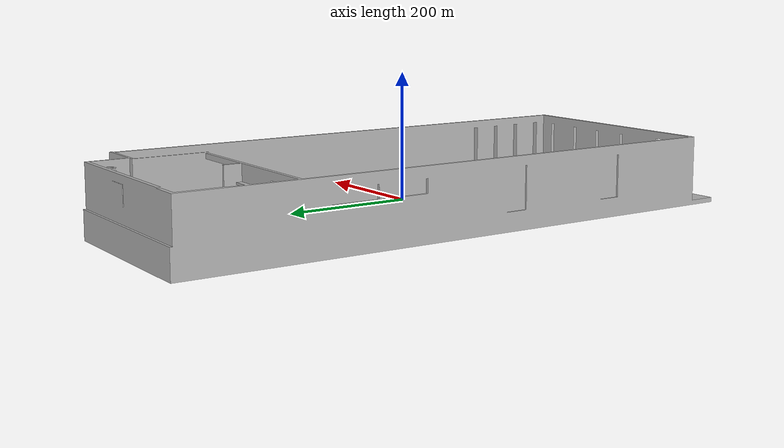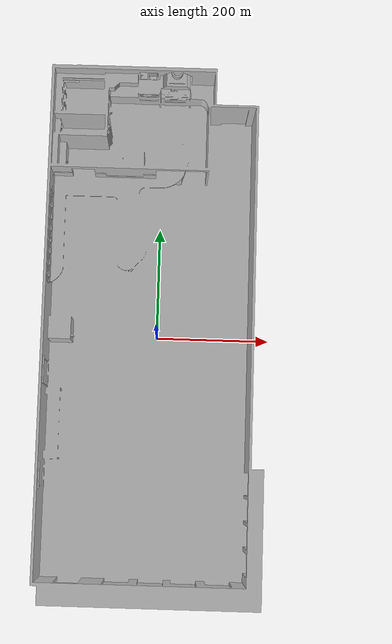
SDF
<?xml version='1.0'?>
<sdf version='1.6'>
  <model name='cafe2'>
    <link name='link'>
      <pose frame=''>0 0 -0.185 0 -0 0</pose>
      <self_collide>0</self_collide>
      <kinematic>0</kinematic>
      <gravity>1</gravity>
      <inertial>
        <mass>1</mass>
        <pose frame=''>0 0 0 0 -0 0</pose>
        <inertia>
          <ixx>1</ixx>
          <ixy>0</ixy>
          <ixz>0</ixz>
          <iyy>1</iyy>
          <iyz>0</iyz>
          <izz>1</izz>
        </inertia>
      </inertial>
      <visual name='visual'>
        <geometry>
          <mesh>
            <uri>model://cafe/meshes/cafe.dae</uri>
            <scale>1 1 1</scale>
          </mesh>
        </geometry>
        <pose frame=''>0 0 0 0 -0 0</pose>
        <cast_shadows>1</cast_shadows>
        <transparency>0</transparency>
        <material>
          <emissive>0 0 0 1</emissive>
          <shader type='vertex'>
            <normal_map>__default__</normal_map>
          </shader>
        </material>
      </visual>
      <collision name='main_floor'>
        <laser_retro>0</laser_retro>
        <max_contacts>10</max_contacts>
        <pose frame=''>-0.4 -0.75 -0.2 0 -0 0</pose>
        <geometry>
          <box>
            <size>9.38 22.63 0.19</size>
          </box>
        </geometry>
        <surface>
          <friction>
            <ode>
              <mu>1</mu>
              <mu2>1</mu2>
              <fdir1>0 0 0</fdir1>
              <slip1>0</slip1>
              <slip2>0</slip2>
            </ode>
            <torsional>
              <coefficient>1</coefficient>
              <patch_radius>0</patch_radius>
              <surface_radius>0</surface_radius>
              <use_patch_radius>1</use_patch_radius>
              <ode>
                <slip>0</slip>
              </ode>
            </torsional>
          </friction>
          <bounce>
            <restitution_coefficient>0</restitution_coefficient>
            <threshold>1e+06</threshold>
          </bounce>
          <contact>
            <collide_without_contact>0</collide_without_contact>
            <collide_without_contact_bitmask>1</collide_without_contact_bitmask>
            <collide_bitmask>1</collide_bitmask>
            <ode>
              <soft_cfm>0</soft_cfm>
              <soft_erp>0.2</soft_erp>
              <kp>1e+13</kp>
              <kd>1</kd>
              <max_vel>0.01</max_vel>
              <min_depth>0</min_depth>
            </ode>
            <bullet>
              <split_impulse>1</split_impulse>
              <split_impulse_penetration_threshold>-0.01</split_impulse_penetration_threshold>
              <soft_cfm>0</soft_cfm>
              <soft_erp>0.2</soft_erp>
              <kp>1e+13</kp>
              <kd>1</kd>
            </bullet>
          </contact>
        </surface>
      </collision>
      <collision name='wall_1'>
        <laser_retro>0</laser_retro>
        <max_contacts>10</max_contacts>
        <pose frame=''>-5.03 0.53 1.415 0 -0 0</pose>
        <geometry>
          <box>
            <size>0.12 23.16 2.83</size>
          </box>
        </geometry>
        <surface>
          <friction>
            <ode>
              <mu>1</mu>
              <mu2>1</mu2>
              <fdir1>0 0 0</fdir1>
              <slip1>0</slip1>
              <slip2>0</slip2>
            </ode>
            <torsional>
              <coefficient>1</coefficient>
              <patch_radius>0</patch_radius>
              <surface_radius>0</surface_radius>
              <use_patch_radius>1</use_patch_radius>
              <ode>
                <slip>0</slip>
              </ode>
            </torsional>
          </friction>
          <bounce>
            <restitution_coefficient>0</restitution_coefficient>
            <threshold>1e+06</threshold>
          </bounce>
          <contact>
            <collide_without_contact>0</collide_without_contact>
            <collide_without_contact_bitmask>1</collide_without_contact_bitmask>
            <collide_bitmask>1</collide_bitmask>
            <ode>
              <soft_cfm>0</soft_cfm>
              <soft_erp>0.2</soft_erp>
              <kp>1e+13</kp>
              <kd>1</kd>
              <max_vel>0.01</max_vel>
              <min_depth>0</min_depth>
            </ode>
            <bullet>
              <split_impulse>1</split_impulse>
              <split_impulse_penetration_threshold>-0.01</split_impulse_penetration_threshold>
              <soft_cfm>0</soft_cfm>
              <soft_erp>0.2</soft_erp>
              <kp>1e+13</kp>
              <kd>1</kd>
            </bullet>
          </contact>
        </surface>
      </collision>
      <collision name='wall_2'>
        <laser_retro>0</laser_retro>
        <max_contacts>10</max_contacts>
        <pose frame=''>4.24 -0.31 1.415 0 -0 0</pose>
        <geometry>
          <box>
            <size>0.12 21.48 2.83</size>
          </box>
        </geometry>
        <surface>
          <friction>
            <ode>
              <mu>1</mu>
              <mu2>1</mu2>
              <fdir1>0 0 0</fdir1>
              <slip1>0</slip1>
              <slip2>0</slip2>
            </ode>
            <torsional>
              <coefficient>1</coefficient>
              <patch_radius>0</patch_radius>
              <surface_radius>0</surface_radius>
              <use_patch_radius>1</use_patch_radius>
              <ode>
                <slip>0</slip>
              </ode>
            </torsional>
          </friction>
          <bounce>
            <restitution_coefficient>0</restitution_coefficient>
            <threshold>1e+06</threshold>
          </bounce>
          <contact>
            <collide_without_contact>0</collide_without_contact>
            <collide_without_contact_bitmask>1</collide_without_contact_bitmask>
            <collide_bitmask>1</collide_bitmask>
            <ode>
              <soft_cfm>0</soft_cfm>
              <soft_erp>0.2</soft_erp>
              <kp>1e+13</kp>
              <kd>1</kd>
              <max_vel>0.01</max_vel>
              <min_depth>0</min_depth>
            </ode>
            <bullet>
              <split_impulse>1</split_impulse>
              <split_impulse_penetration_threshold>-0.01</split_impulse_penetration_threshold>
              <soft_cfm>0</soft_cfm>
              <soft_erp>0.2</soft_erp>
              <kp>1e+13</kp>
              <kd>1</kd>
            </bullet>
          </contact>
        </surface>
      </collision>
      <collision name='wall_3'>
        <laser_retro>0</laser_retro>
        <max_contacts>10</max_contacts>
        <pose frame=''>-1.48 7.43 1.415 0 -0 0</pose>
        <geometry>
          <box>
            <size>7.2 0.12 2.83</size>
          </box>
        </geometry>
        <surface>
          <friction>
            <ode>
              <mu>1</mu>
              <mu2>1</mu2>
              <fdir1>0 0 0</fdir1>
              <slip1>0</slip1>
              <slip2>0</slip2>
            </ode>
            <torsional>
              <coefficient>1</coefficient>
              <patch_radius>0</patch_radius>
              <surface_radius>0</surface_radius>
              <use_patch_radius>1</use_patch_radius>
              <ode>
                <slip>0</slip>
              </ode>
            </torsional>
          </friction>
          <bounce>
            <restitution_coefficient>0</restitution_coefficient>
            <threshold>1e+06</threshold>
          </bounce>
          <contact>
            <collide_without_contact>0</collide_without_contact>
            <collide_without_contact_bitmask>1</collide_without_contact_bitmask>
            <collide_bitmask>1</collide_bitmask>
            <ode>
              <soft_cfm>0</soft_cfm>
              <soft_erp>0.2</soft_erp>
              <kp>1e+13</kp>
              <kd>1</kd>
              <max_vel>0.01</max_vel>
              <min_depth>0</min_depth>
            </ode>
            <bullet>
              <split_impulse>1</split_impulse>
              <split_impulse_penetration_threshold>-0.01</split_impulse_penetration_threshold>
              <soft_cfm>0</soft_cfm>
              <soft_erp>0.2</soft_erp>
              <kp>1e+13</kp>
              <kd>1</kd>
            </bullet>
          </contact>
        </surface>
      </collision>
      <collision name='wall_5'>
        <laser_retro>0</laser_retro>
        <max_contacts>10</max_contacts>
        <pose frame=''>3.155 10.4 1.435 0 -0 0</pose>
        <geometry>
          <box>
            <size>2.13 0.12 2.87</size>
          </box>
        </geometry>
        <surface>
          <friction>
            <ode>
              <mu>1</mu>
              <mu2>1</mu2>
              <fdir1>0 0 0</fdir1>
              <slip1>0</slip1>
              <slip2>0</slip2>
            </ode>
            <torsional>
              <coefficient>1</coefficient>
              <patch_radius>0</patch_radius>
              <surface_radius>0</surface_radius>
              <use_patch_radius>1</use_patch_radius>
              <ode>
                <slip>0</slip>
              </ode>
            </torsional>
          </friction>
          <bounce>
            <restitution_coefficient>0</restitution_coefficient>
            <threshold>1e+06</threshold>
          </bounce>
          <contact>
            <collide_without_contact>0</collide_without_contact>
            <collide_without_contact_bitmask>1</collide_without_contact_bitmask>
            <collide_bitmask>1</collide_bitmask>
            <ode>
              <soft_cfm>0</soft_cfm>
              <soft_erp>0.2</soft_erp>
              <kp>1e+13</kp>
              <kd>1</kd>
              <max_vel>0.01</max_vel>
              <min_depth>0</min_depth>
            </ode>
            <bullet>
              <split_impulse>1</split_impulse>
              <split_impulse_penetration_threshold>-0.01</split_impulse_penetration_threshold>
              <soft_cfm>0</soft_cfm>
              <soft_erp>0.2</soft_erp>
              <kp>1e+13</kp>
              <kd>1</kd>
            </bullet>
          </contact>
        </surface>
      </collision>
      <collision name='wall_4'>
        <laser_retro>0</laser_retro>
        <max_contacts>10</max_contacts>
        <pose frame=''>2.09 8.9 1.435 0 -0 0</pose>
        <geometry>
          <box>
            <size>0.12 3.05 2.87</size>
          </box>
        </geometry>
        <surface>
          <friction>
            <ode>
              <mu>1</mu>
              <mu2>1</mu2>
              <fdir1>0 0 0</fdir1>
              <slip1>0</slip1>
              <slip2>0</slip2>
            </ode>
            <torsional>
              <coefficient>1</coefficient>
              <patch_radius>0</patch_radius>
              <surface_radius>0</surface_radius>
              <use_patch_radius>1</use_patch_radius>
              <ode>
                <slip>0</slip>
              </ode>
            </torsional>
          </friction>
          <bounce>
            <restitution_coefficient>0</restitution_coefficient>
            <threshold>1e+06</threshold>
          </bounce>
          <contact>
            <collide_without_contact>0</collide_without_contact>
            <collide_without_contact_bitmask>1</collide_without_contact_bitmask>
            <collide_bitmask>1</collide_bitmask>
            <ode>
              <soft_cfm>0</soft_cfm>
              <soft_erp>0.2</soft_erp>
              <kp>1e+13</kp>
              <kd>1</kd>
              <max_vel>0.01</max_vel>
              <min_depth>0</min_depth>
            </ode>
            <bullet>
              <split_impulse>1</split_impulse>
              <split_impulse_penetration_threshold>-0.01</split_impulse_penetration_threshold>
              <soft_cfm>0</soft_cfm>
              <soft_erp>0.2</soft_erp>
              <kp>1e+13</kp>
              <kd>1</kd>
            </bullet>
          </contact>
        </surface>
      </collision>
      <collision name='wall_6'>
        <laser_retro>0</laser_retro>
        <max_contacts>10</max_contacts>
        <pose frame=''>0.615 -10.98 1.415 0 -0 0</pose>
        <geometry>
          <box>
            <size>7.36 0.15 2.83</size>
          </box>
        </geometry>
        <surface>
          <friction>
            <ode>
              <mu>1</mu>
              <mu2>1</mu2>
              <fdir1>0 0 0</fdir1>
              <slip1>0</slip1>
              <slip2>0</slip2>
            </ode>
            <torsional>
              <coefficient>1</coefficient>
              <patch_radius>0</patch_radius>
              <surface_radius>0</surface_radius>
              <use_patch_radius>1</use_patch_radius>
              <ode>
                <slip>0</slip>
              </ode>
            </torsional>
          </friction>
          <bounce>
            <restitution_coefficient>0</restitution_coefficient>
            <threshold>1e+06</threshold>
          </bounce>
          <contact>
            <collide_without_contact>0</collide_without_contact>
            <collide_without_contact_bitmask>1</collide_without_contact_bitmask>
            <collide_bitmask>1</collide_bitmask>
            <ode>
              <soft_cfm>0</soft_cfm>
              <soft_erp>0.2</soft_erp>
              <kp>1e+13</kp>
              <kd>1</kd>
              <max_vel>0.01</max_vel>
              <min_depth>0</min_depth>
            </ode>
            <bullet>
              <split_impulse>1</split_impulse>
              <split_impulse_penetration_threshold>-0.01</split_impulse_penetration_threshold>
              <soft_cfm>0</soft_cfm>
              <soft_erp>0.2</soft_erp>
              <kp>1e+13</kp>
              <kd>1</kd>
            </bullet>
          </contact>
        </surface>
      </collision>
      <collision name='wall_7'>
        <laser_retro>0</laser_retro>
        <max_contacts>10</max_contacts>
        <pose frame=''>-4.62 -10.98 1.415 0 -0 0</pose>
        <geometry>
          <box>
            <size>0.93 0.15 2.83</size>
          </box>
        </geometry>
        <surface>
          <friction>
            <ode>
              <mu>1</mu>
              <mu2>1</mu2>
              <fdir1>0 0 0</fdir1>
              <slip1>0</slip1>
              <slip2>0</slip2>
            </ode>
            <torsional>
              <coefficient>1</coefficient>
              <patch_radius>0</patch_radius>
              <surface_radius>0</surface_radius>
              <use_patch_radius>1</use_patch_radius>
              <ode>
                <slip>0</slip>
              </ode>
            </torsional>
          </friction>
          <bounce>
            <restitution_coefficient>0</restitution_coefficient>
            <threshold>1e+06</threshold>
          </bounce>
          <contact>
            <collide_without_contact>0</collide_without_contact>
            <collide_without_contact_bitmask>1</collide_without_contact_bitmask>
            <collide_bitmask>1</collide_bitmask>
            <ode>
              <soft_cfm>0</soft_cfm>
              <soft_erp>0.2</soft_erp>
              <kp>1e+13</kp>
              <kd>1</kd>
              <max_vel>0.01</max_vel>
              <min_depth>0</min_depth>
            </ode>
            <bullet>
              <split_impulse>1</split_impulse>
              <split_impulse_penetration_threshold>-0.01</split_impulse_penetration_threshold>
              <soft_cfm>0</soft_cfm>
              <soft_erp>0.2</soft_erp>
              <kp>1e+13</kp>
              <kd>1</kd>
            </bullet>
          </contact>
        </surface>
      </collision>
      <collision name='wall_8'>
        <laser_retro>0</laser_retro>
        <max_contacts>10</max_contacts>
        <pose frame=''>-3.61 -10.98 2.69 0 -0 0</pose>
        <geometry>
          <box>
            <size>1.09 0.15 0.28</size>
          </box>
        </geometry>
        <surface>
          <friction>
            <ode>
              <mu>1</mu>
              <mu2>1</mu2>
              <fdir1>0 0 0</fdir1>
              <slip1>0</slip1>
              <slip2>0</slip2>
            </ode>
            <torsional>
              <coefficient>1</coefficient>
              <patch_radius>0</patch_radius>
              <surface_radius>0</surface_radius>
              <use_patch_radius>1</use_patch_radius>
              <ode>
                <slip>0</slip>
              </ode>
            </torsional>
          </friction>
          <bounce>
            <restitution_coefficient>0</restitution_coefficient>
            <threshold>1e+06</threshold>
          </bounce>
          <contact>
            <collide_without_contact>0</collide_without_contact>
            <collide_without_contact_bitmask>1</collide_without_contact_bitmask>
            <collide_bitmask>1</collide_bitmask>
            <ode>
              <soft_cfm>0</soft_cfm>
              <soft_erp>0.2</soft_erp>
              <kp>1e+13</kp>
              <kd>1</kd>
              <max_vel>0.01</max_vel>
              <min_depth>0</min_depth>
            </ode>
            <bullet>
              <split_impulse>1</split_impulse>
              <split_impulse_penetration_threshold>-0.01</split_impulse_penetration_threshold>
              <soft_cfm>0</soft_cfm>
              <soft_erp>0.2</soft_erp>
              <kp>1e+13</kp>
              <kd>1</kd>
            </bullet>
          </contact>
        </surface>
      </collision>
      <collision name='coke'>
        <laser_retro>0</laser_retro>
        <max_contacts>10</max_contacts>
        <pose frame=''>-4.385 0.26 0.95 0 -0 0</pose>
        <geometry>
          <box>
            <size>1.03 1.03 1.52</size>
          </box>
        </geometry>
        <surface>
          <friction>
            <ode>
              <mu>1</mu>
              <mu2>1</mu2>
              <fdir1>0 0 0</fdir1>
              <slip1>0</slip1>
              <slip2>0</slip2>
            </ode>
            <torsional>
              <coefficient>1</coefficient>
              <patch_radius>0</patch_radius>
              <surface_radius>0</surface_radius>
              <use_patch_radius>1</use_patch_radius>
              <ode>
                <slip>0</slip>
              </ode>
            </torsional>
          </friction>
          <bounce>
            <restitution_coefficient>0</restitution_coefficient>
            <threshold>1e+06</threshold>
          </bounce>
          <contact>
            <collide_without_contact>0</collide_without_contact>
            <collide_without_contact_bitmask>1</collide_without_contact_bitmask>
            <collide_bitmask>1</collide_bitmask>
            <ode>
              <soft_cfm>0</soft_cfm>
              <soft_erp>0.2</soft_erp>
              <kp>1e+13</kp>
              <kd>1</kd>
              <max_vel>0.01</max_vel>
              <min_depth>0</min_depth>
            </ode>
            <bullet>
              <split_impulse>1</split_impulse>
              <split_impulse_penetration_threshold>-0.01</split_impulse_penetration_threshold>
              <soft_cfm>0</soft_cfm>
              <soft_erp>0.2</soft_erp>
              <kp>1e+13</kp>
              <kd>1</kd>
            </bullet>
          </contact>
        </surface>
      </collision>
    </link>
    <static>1</static>
    <allow_auto_disable>1</allow_auto_disable>
  </model>
</sdf>
